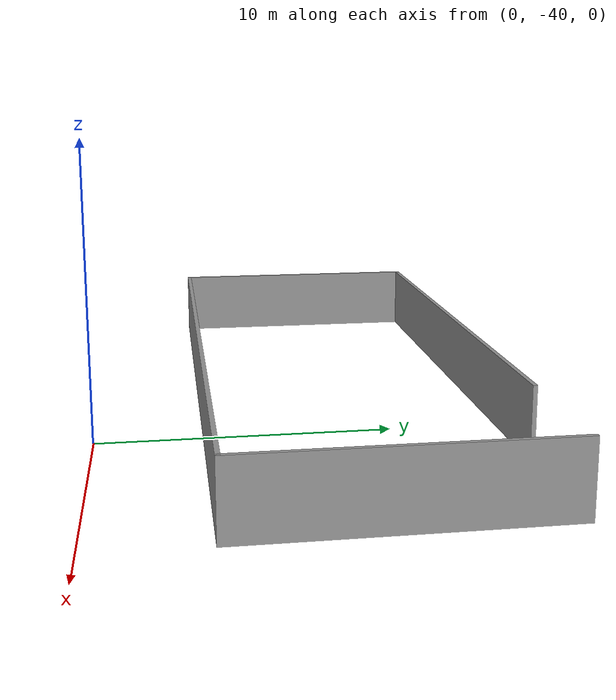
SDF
<?xml version='1.0'?>
<sdf version='1.6'>
  <model name='room2'>
    <pose frame=''>-3.77032 -31.2798 0 0 -0 0</pose>
    <link name='Wall_20'>
      <collision name='Wall_20_Collision'>
        <geometry>
          <box>
            <size>19.75 0.15 2.5</size>
          </box>
        </geometry>
        <pose frame=''>0 0 1.25 0 -0 0</pose>
      </collision>
      <visual name='Wall_20_Visual'>
        <pose frame=''>0 0 1.25 0 -0 0</pose>
        <geometry>
          <box>
            <size>19.75 0.15 2.5</size>
          </box>
        </geometry>
        <material>
          <script>
            <uri>file://media/materials/scripts/gazebo.material</uri>
            <name>Gazebo/Grey</name>
          </script>
          <ambient>1 1 1 1</ambient>
        </material>
        <meta>
          <layer>0</layer>
        </meta>
      </visual>
      <pose frame=''>-2.375 5.05 0 0 -0 3.14159</pose>
    </link>
    <link name='Wall_21'>
      <collision name='Wall_21_Collision'>
        <geometry>
          <box>
            <size>10.25 0.15 2.5</size>
          </box>
        </geometry>
        <pose frame=''>0 0 1.25 0 -0 0</pose>
      </collision>
      <visual name='Wall_21_Visual'>
        <pose frame=''>0 0 1.25 0 -0 0</pose>
        <geometry>
          <box>
            <size>10.25 0.15 2.5</size>
          </box>
        </geometry>
        <material>
          <script>
            <uri>file://media/materials/scripts/gazebo.material</uri>
            <name>Gazebo/Grey</name>
          </script>
          <ambient>1 1 1 1</ambient>
        </material>
        <meta>
          <layer>0</layer>
        </meta>
      </visual>
      <pose frame=''>-12.175 0 0 0 -0 -1.5708</pose>
    </link>
    <link name='Wall_22'>
      <collision name='Wall_22_Collision'>
        <geometry>
          <box>
            <size>24.5 0.15 2.5</size>
          </box>
        </geometry>
        <pose frame=''>0 0 1.25 0 -0 0</pose>
      </collision>
      <visual name='Wall_22_Visual'>
        <pose frame=''>0 0 1.25 0 -0 0</pose>
        <geometry>
          <box>
            <size>24.5 0.15 2.5</size>
          </box>
        </geometry>
        <material>
          <script>
            <uri>file://media/materials/scripts/gazebo.material</uri>
            <name>Gazebo/Grey</name>
          </script>
          <ambient>1 1 1 1</ambient>
        </material>
        <meta>
          <layer>0</layer>
        </meta>
      </visual>
      <pose frame=''>0 -5.05 0 0 -0 0</pose>
    </link>
    <link name='Wall_23'>
      <collision name='Wall_23_Collision'>
        <geometry>
          <box>
            <size>10.25 0.15 2.5</size>
          </box>
        </geometry>
        <pose frame=''>0 0 1.25 0 -0 0</pose>
      </collision>
      <visual name='Wall_23_Visual'>
        <pose frame=''>0 0 1.25 0 -0 0</pose>
        <geometry>
          <box>
            <size>10.25 0.15 2.5</size>
          </box>
        </geometry>
        <material>
          <script>
            <uri>file://media/materials/scripts/gazebo.material</uri>
            <name>Gazebo/Grey</name>
          </script>
          <ambient>1 1 1 1</ambient>
        </material>
        <meta>
          <layer>0</layer>
        </meta>
      </visual>
      <pose frame=''>12.175 0 0 0 -0 1.5708</pose>
    </link>
    <static>1</static>
  </model>
</sdf>
